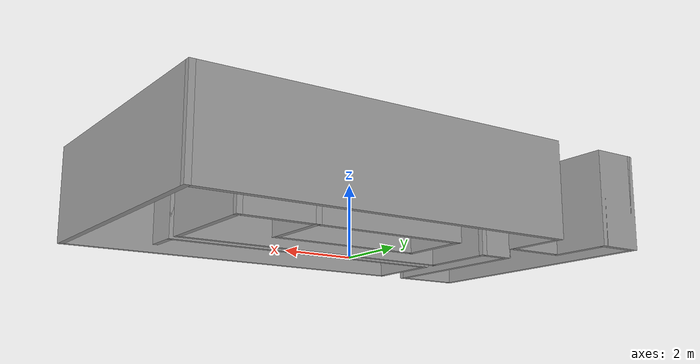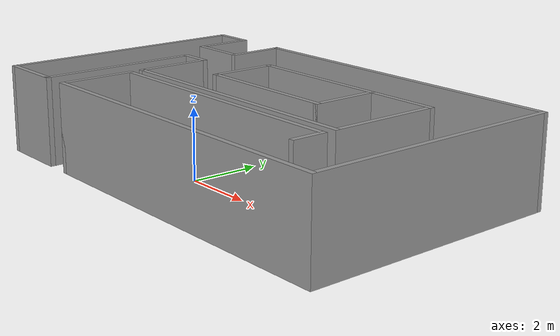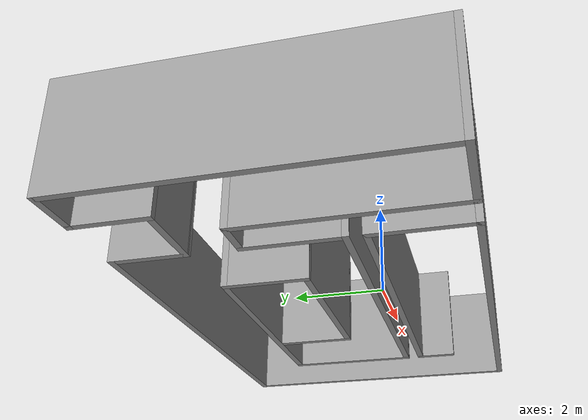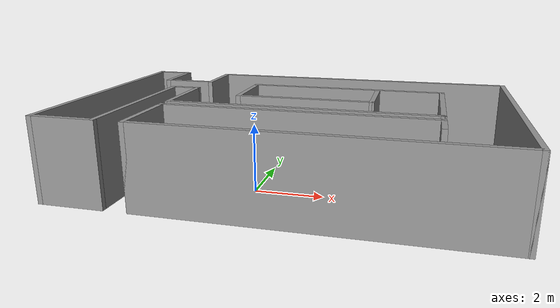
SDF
<?xml version='1.0'?>
<sdf version='1.7'>
  <model name='labdefaultmap'>
    <pose>0.845 1.405 0 0 -0 0</pose>
    <link name='Wall_10'>
      <collision name='Wall_10_Collision'>
        <geometry>
          <box>
            <size>8 0.15 2.5</size>
          </box>
        </geometry>
        <pose>0 0 1.25 0 -0 0</pose>
      </collision>
      <visual name='Wall_10_Visual'>
        <pose>0 0 1.25 0 -0 0</pose>
        <geometry>
          <box>
            <size>8 0.15 2.5</size>
          </box>
        </geometry>
        <material>
          <script>
            <uri>file://media/materials/scripts/gazebo.material</uri>
            <name>Gazebo/Grey</name>
          </script>
          <ambient>1 1 1 1</ambient>
        </material>
        <meta>
          <layer>0</layer>
        </meta>
      </visual>
      <pose>0.35 -1.175 0 0 -0 0</pose>
    </link>
    <link name='Wall_11'>
      <collision name='Wall_11_Collision'>
        <geometry>
          <box>
            <size>3.25 0.15 2.5</size>
          </box>
        </geometry>
        <pose>0 0 1.25 0 -0 0</pose>
      </collision>
      <visual name='Wall_11_Visual'>
        <pose>0 0 1.25 0 -0 0</pose>
        <geometry>
          <box>
            <size>3.25 0.15 2.5</size>
          </box>
        </geometry>
        <material>
          <script>
            <uri>file://media/materials/scripts/gazebo.material</uri>
            <name>Gazebo/Grey</name>
          </script>
          <ambient>1 1 1 1</ambient>
        </material>
        <meta>
          <layer>0</layer>
        </meta>
      </visual>
      <pose>4.275 0.375 0 0 -0 1.5708</pose>
    </link>
    <link name='Wall_12'>
      <collision name='Wall_12_Collision'>
        <geometry>
          <box>
            <size>6.25 0.15 2.5</size>
          </box>
        </geometry>
        <pose>0 0 1.25 0 -0 0</pose>
      </collision>
      <visual name='Wall_12_Visual'>
        <pose>0 0 1.25 0 -0 0</pose>
        <geometry>
          <box>
            <size>6.25 0.15 2.5</size>
          </box>
        </geometry>
        <material>
          <script>
            <uri>file://media/materials/scripts/gazebo.material</uri>
            <name>Gazebo/Grey</name>
          </script>
          <ambient>1 1 1 1</ambient>
        </material>
        <meta>
          <layer>0</layer>
        </meta>
      </visual>
      <pose>1.225 1.925 0 0 -0 3.14159</pose>
    </link>
    <link name='Wall_13'>
      <collision name='Wall_13_Collision'>
        <geometry>
          <box>
            <size>2 0.15 2.5</size>
          </box>
        </geometry>
        <pose>0 0 1.25 0 -0 0</pose>
      </collision>
      <visual name='Wall_13_Visual'>
        <pose>0 0 1.25 0 -0 0</pose>
        <geometry>
          <box>
            <size>2 0.15 2.5</size>
          </box>
        </geometry>
        <material>
          <script>
            <uri>file://media/materials/scripts/gazebo.material</uri>
            <name>Gazebo/Grey</name>
          </script>
          <ambient>1 1 1 1</ambient>
        </material>
        <meta>
          <layer>0</layer>
        </meta>
      </visual>
      <pose>-1.825 1 0 0 -0 -1.5708</pose>
    </link>
    <link name='Wall_14'>
      <collision name='Wall_14_Collision'>
        <geometry>
          <box>
            <size>4.25 0.15 2.5</size>
          </box>
        </geometry>
        <pose>0 0 1.25 0 -0 0</pose>
      </collision>
      <visual name='Wall_14_Visual'>
        <pose>0 0 1.25 0 -0 0</pose>
        <geometry>
          <box>
            <size>4.25 0.15 2.5</size>
          </box>
        </geometry>
        <material>
          <script>
            <uri>file://media/materials/scripts/gazebo.material</uri>
            <name>Gazebo/Grey</name>
          </script>
          <ambient>1 1 1 1</ambient>
        </material>
        <meta>
          <layer>0</layer>
        </meta>
      </visual>
      <pose>0.225 0.075 0 0 -0 0</pose>
    </link>
    <link name='Wall_15'>
      <collision name='Wall_15_Collision'>
        <geometry>
          <box>
            <size>2 0.15 2.5</size>
          </box>
        </geometry>
        <pose>0 0 1.25 0 -0 0</pose>
      </collision>
      <visual name='Wall_15_Visual'>
        <pose>0 0 1.25 0 -0 0</pose>
        <geometry>
          <box>
            <size>2 0.15 2.5</size>
          </box>
        </geometry>
        <material>
          <script>
            <uri>file://media/materials/scripts/gazebo.material</uri>
            <name>Gazebo/Grey</name>
          </script>
          <ambient>1 1 1 1</ambient>
        </material>
        <meta>
          <layer>0</layer>
        </meta>
      </visual>
      <pose>2.275 1 0 0 -0 1.5708</pose>
    </link>
    <link name='Wall_18'>
      <collision name='Wall_18_Collision'>
        <geometry>
          <box>
            <size>2.25 0.15 2.5</size>
          </box>
        </geometry>
        <pose>0 0 1.25 0 -0 0</pose>
      </collision>
      <visual name='Wall_18_Visual'>
        <pose>0 0 1.25 0 -0 0</pose>
        <geometry>
          <box>
            <size>2.25 0.15 2.5</size>
          </box>
        </geometry>
        <material>
          <script>
            <uri>file://media/materials/scripts/gazebo.material</uri>
            <name>Gazebo/Grey</name>
          </script>
          <ambient>1 1 1 1</ambient>
        </material>
        <meta>
          <layer>0</layer>
        </meta>
      </visual>
      <pose>-3.575 -2.625 0 0 -0 1.5708</pose>
    </link>
    <link name='Wall_19'>
      <collision name='Wall_19_Collision'>
        <geometry>
          <box>
            <size>8 0.15 2.5</size>
          </box>
        </geometry>
        <pose>0 0 1.25 0 -0 0</pose>
      </collision>
      <visual name='Wall_19_Visual'>
        <pose>0 0 1.25 0 -0 0</pose>
        <geometry>
          <box>
            <size>8 0.15 2.5</size>
          </box>
        </geometry>
        <material>
          <script>
            <uri>file://media/materials/scripts/gazebo.material</uri>
            <name>Gazebo/Grey</name>
          </script>
          <ambient>1 1 1 1</ambient>
        </material>
        <meta>
          <layer>0</layer>
        </meta>
      </visual>
      <pose>0.35 -1.575 0 0 -0 0</pose>
    </link>
    <link name='Wall_20'>
      <collision name='Wall_20_Collision'>
        <geometry>
          <box>
            <size>1 0.15 2.5</size>
          </box>
        </geometry>
        <pose>0 0 1.25 0 -0 0</pose>
      </collision>
      <visual name='Wall_20_Visual'>
        <pose>0 0 1.25 0 -0 0</pose>
        <geometry>
          <box>
            <size>1 0.15 2.5</size>
          </box>
        </geometry>
        <material>
          <script>
            <uri>file://media/materials/scripts/gazebo.material</uri>
            <name>Gazebo/Grey</name>
          </script>
          <ambient>1 1 1 1</ambient>
        </material>
        <meta>
          <layer>0</layer>
        </meta>
      </visual>
      <pose>4.275 -2 0 0 -0 -1.5708</pose>
    </link>
    <link name='Wall_22'>
      <collision name='Wall_22_Collision'>
        <geometry>
          <box>
            <size>10 0.15 2.5</size>
          </box>
        </geometry>
        <pose>0 0 1.25 0 -0 0</pose>
      </collision>
      <visual name='Wall_22_Visual'>
        <pose>0 0 1.25 0 -0 0</pose>
        <geometry>
          <box>
            <size>10 0.15 2.5</size>
          </box>
        </geometry>
        <material>
          <script>
            <uri>file://media/materials/scripts/gazebo.material</uri>
            <name>Gazebo/Grey</name>
          </script>
          <ambient>1 1 1 1</ambient>
        </material>
        <meta>
          <layer>0</layer>
        </meta>
      </visual>
      <pose>1.35 -3.675 0 0 -0 0</pose>
    </link>
    <link name='Wall_24'>
      <collision name='Wall_24_Collision'>
        <geometry>
          <box>
            <size>2.25 0.15 2.5</size>
          </box>
        </geometry>
        <pose>0 0 1.25 0 -0 0</pose>
      </collision>
      <visual name='Wall_24_Visual'>
        <pose>0 0 1.25 0 -0 0</pose>
        <geometry>
          <box>
            <size>2.25 0.15 2.5</size>
          </box>
        </geometry>
        <material>
          <script>
            <uri>file://media/materials/scripts/gazebo.material</uri>
            <name>Gazebo/Grey</name>
          </script>
          <ambient>1 1 1 1</ambient>
        </material>
        <meta>
          <layer>0</layer>
        </meta>
      </visual>
      <pose>-3.575 -0.125 0 0 -0 1.5708</pose>
    </link>
    <link name='Wall_25'>
      <collision name='Wall_25_Collision'>
        <geometry>
          <box>
            <size>1 0.15 2.5</size>
          </box>
        </geometry>
        <pose>0 0 1.25 0 -0 0</pose>
      </collision>
      <visual name='Wall_25_Visual'>
        <pose>0 0 1.25 0 -0 0</pose>
        <geometry>
          <box>
            <size>1 0.15 2.5</size>
          </box>
        </geometry>
        <material>
          <script>
            <uri>file://media/materials/scripts/gazebo.material</uri>
            <name>Gazebo/Grey</name>
          </script>
          <ambient>1 1 1 1</ambient>
        </material>
        <meta>
          <layer>0</layer>
        </meta>
      </visual>
      <pose>-4 0.925 0 0 -0 3.14159</pose>
    </link>
    <link name='Wall_26'>
      <collision name='Wall_26_Collision'>
        <geometry>
          <box>
            <size>4.75 0.15 2.5</size>
          </box>
        </geometry>
        <pose>0 0 1.25 0 -0 0</pose>
      </collision>
      <visual name='Wall_26_Visual'>
        <pose>0 0 1.25 0 -0 0</pose>
        <geometry>
          <box>
            <size>4.75 0.15 2.5</size>
          </box>
        </geometry>
        <material>
          <script>
            <uri>file://media/materials/scripts/gazebo.material</uri>
            <name>Gazebo/Grey</name>
          </script>
          <ambient>1 1 1 1</ambient>
        </material>
        <meta>
          <layer>0</layer>
        </meta>
      </visual>
      <pose>-4.425 -1.375 0 0 -0 -1.5708</pose>
    </link>
    <link name='Wall_27'>
      <collision name='Wall_27_Collision'>
        <geometry>
          <box>
            <size>2 0.15 2.5</size>
          </box>
        </geometry>
        <pose>0 0 1.25 0 -0 0</pose>
      </collision>
      <visual name='Wall_27_Visual'>
        <pose>0 0 1.25 0 -0 0</pose>
        <geometry>
          <box>
            <size>2 0.15 2.5</size>
          </box>
        </geometry>
        <material>
          <script>
            <uri>file://media/materials/scripts/gazebo.material</uri>
            <name>Gazebo/Grey</name>
          </script>
          <ambient>1 1 1 1</ambient>
        </material>
        <meta>
          <layer>0</layer>
        </meta>
      </visual>
      <pose>-5.35 -3.675 0 0 -0 3.14159</pose>
    </link>
    <link name='Wall_28'>
      <collision name='Wall_28_Collision'>
        <geometry>
          <box>
            <size>7.5 0.15 2.5</size>
          </box>
        </geometry>
        <pose>0 0 1.25 0 -0 0</pose>
      </collision>
      <visual name='Wall_28_Visual'>
        <pose>0 0 1.25 0 -0 0</pose>
        <geometry>
          <box>
            <size>7.5 0.15 2.5</size>
          </box>
        </geometry>
        <material>
          <script>
            <uri>file://media/materials/scripts/gazebo.material</uri>
            <name>Gazebo/Grey</name>
          </script>
          <ambient>1 1 1 1</ambient>
        </material>
        <meta>
          <layer>0</layer>
        </meta>
      </visual>
      <pose>-6.275 -0 0 0 -0 1.5708</pose>
    </link>
    <link name='Wall_31'>
      <collision name='Wall_31_Collision'>
        <geometry>
          <box>
            <size>1.25 0.15 2.5</size>
          </box>
        </geometry>
        <pose>0 0 1.25 0 -0 0</pose>
      </collision>
      <visual name='Wall_31_Visual'>
        <pose>0 0 1.25 0 -0 0</pose>
        <geometry>
          <box>
            <size>1.25 0.15 2.5</size>
          </box>
        </geometry>
        <material>
          <script>
            <uri>file://media/materials/scripts/gazebo.material</uri>
            <name>Gazebo/Grey</name>
          </script>
          <ambient>1 1 1 1</ambient>
        </material>
        <meta>
          <layer>0</layer>
        </meta>
      </visual>
      <pose>-5.725 3.675 0 0 -0 0</pose>
    </link>
    <link name='Wall_32'>
      <collision name='Wall_32_Collision'>
        <geometry>
          <box>
            <size>1.75 0.15 2.5</size>
          </box>
        </geometry>
        <pose>0 0 1.25 0 -0 0</pose>
      </collision>
      <visual name='Wall_32_Visual'>
        <pose>0 0 1.25 0 -0 0</pose>
        <geometry>
          <box>
            <size>1.75 0.15 2.5</size>
          </box>
        </geometry>
        <material>
          <script>
            <uri>file://media/materials/scripts/gazebo.material</uri>
            <name>Gazebo/Grey</name>
          </script>
          <ambient>1 1 1 1</ambient>
        </material>
        <meta>
          <layer>0</layer>
        </meta>
      </visual>
      <pose>-5.175 2.875 0 0 -0 -1.5708</pose>
    </link>
    <link name='Wall_33'>
      <collision name='Wall_33_Collision'>
        <geometry>
          <box>
            <size>1.75 0.15 2.5</size>
          </box>
        </geometry>
        <pose>0 0 1.25 0 -0 0</pose>
      </collision>
      <visual name='Wall_33_Visual'>
        <pose>0 0 1.25 0 -0 0</pose>
        <geometry>
          <box>
            <size>1.75 0.15 2.5</size>
          </box>
        </geometry>
        <material>
          <script>
            <uri>file://media/materials/scripts/gazebo.material</uri>
            <name>Gazebo/Grey</name>
          </script>
          <ambient>1 1 1 1</ambient>
        </material>
        <meta>
          <layer>0</layer>
        </meta>
      </visual>
      <pose>-4.375 2.075 0 0 -0 0</pose>
    </link>
    <link name='Wall_34'>
      <collision name='Wall_34_Collision'>
        <geometry>
          <box>
            <size>1.75 0.15 2.5</size>
          </box>
        </geometry>
        <pose>0 0 1.25 0 -0 0</pose>
      </collision>
      <visual name='Wall_34_Visual'>
        <pose>0 0 1.25 0 -0 0</pose>
        <geometry>
          <box>
            <size>1.75 0.15 2.5</size>
          </box>
        </geometry>
        <material>
          <script>
            <uri>file://media/materials/scripts/gazebo.material</uri>
            <name>Gazebo/Grey</name>
          </script>
          <ambient>1 1 1 1</ambient>
        </material>
        <meta>
          <layer>0</layer>
        </meta>
      </visual>
      <pose>-3.575 2.875 0 0 -0 1.5708</pose>
    </link>
    <link name='Wall_4'>
      <collision name='Wall_4_Collision'>
        <geometry>
          <box>
            <size>7.5 0.15 2.5</size>
          </box>
        </geometry>
        <pose>0 0 1.25 0 -0 0</pose>
      </collision>
      <visual name='Wall_4_Visual'>
        <pose>0 0 1.25 0 -0 0</pose>
        <geometry>
          <box>
            <size>7.5 0.15 2.5</size>
          </box>
        </geometry>
        <material>
          <script>
            <uri>file://media/materials/scripts/gazebo.material</uri>
            <name>Gazebo/Grey</name>
          </script>
          <ambient>1 1 1 1</ambient>
        </material>
        <meta>
          <layer>0</layer>
        </meta>
      </visual>
      <pose>6.275 -0 0 0 -0 1.5708</pose>
    </link>
    <link name='Wall_5'>
      <collision name='Wall_5_Collision'>
        <geometry>
          <box>
            <size>10 0.15 2.5</size>
          </box>
        </geometry>
        <pose>0 0 1.25 0 -0 0</pose>
      </collision>
      <visual name='Wall_5_Visual'>
        <pose>0 0 1.25 0 -0 0</pose>
        <geometry>
          <box>
            <size>10 0.15 2.5</size>
          </box>
        </geometry>
        <material>
          <script>
            <uri>file://media/materials/scripts/gazebo.material</uri>
            <name>Gazebo/Grey</name>
          </script>
          <ambient>1 1 1 1</ambient>
        </material>
        <meta>
          <layer>0</layer>
        </meta>
      </visual>
      <pose>1.35 3.675 0 0 -0 3.14159</pose>
    </link>
    <static>1</static>
  </model>
</sdf>
